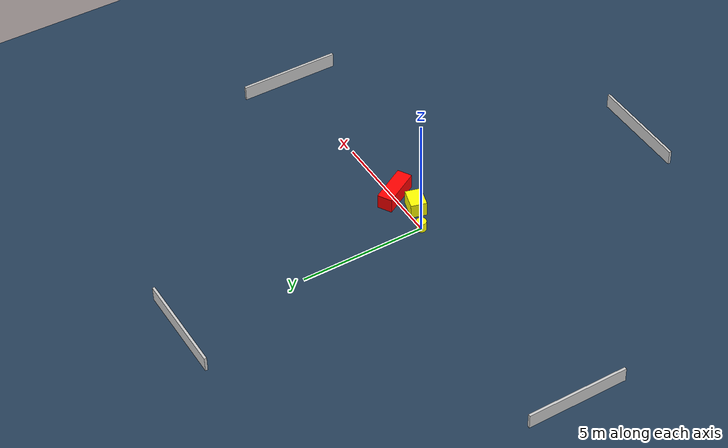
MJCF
<?xml version="1.0" ?>
<mujoco model="generated_environment">
  <option timestep="0.01" integrator="RK4" cone="elliptic"/>
  <default>
    <geom density="1"/>
  </default>
  <asset>
    <texture builtin="gradient" height="3072" name="skybox" rgb1="0.3 0.5 0.7" rgb2="0 0 0" type="skybox" width="512"/>
    <texture builtin="checker" height="300" name="groundplane" rgb1="0.2 0.3 0.4" rgb2="0.1 0.2 0.3" type="2d" width="300"/>
    <material name="groundplane" reflectance="0.2" texrepeat="5 5" texture="groundplane"/>
  </asset>
  <worldbody>
    <light dir="0 0 -1" directional="true" pos="0 0 1.5"/>
    <geom condim="3" friction="0.5 0.005 0.001" material="groundplane" name="floor" pos="0 0 0" size="0 0 0.05" type="plane"/>
    <body name="walls">
      <geom name="wall_1" condim="4" pos="-10.0 0.0 0.3" rgba="0.800000011920929 0.800000011920929 0.800000011920929 1.0" size="0.05 2.0 0.3" type="box"/>
      <geom name="wall_2" condim="4" pos="10.0 0.0 0.3" rgba="0.800000011920929 0.800000011920929 0.800000011920929 1.0" size="0.05 2.0 0.3" type="box"/>
      <geom name="wall_3" condim="4" pos="0.0 -10.0 0.3" rgba="0.800000011920929 0.800000011920929 0.800000011920929 1.0" size="2.0 0.05 0.3" type="box"/>
      <geom name="wall_4" condim="4" pos="0.0 10.0 0.3" rgba="0.800000011920929 0.800000011920929 0.800000011920929 1.0" size="2.0 0.05 0.3" type="box"/>
    </body>
    <body name="robot">
      <joint name="joint_x" type="slide" pos="0 0 0" axis="1 0 0"/>
      <joint name="joint_y" type="slide" pos="0 0 0" axis="0 1 0"/>
      <geom name="robot" type="cylinder" pos="0.0 0.0 0.2" size="0.2 0.2 0.0" mass="5.0" friction="1.0 0.005 0.0001" condim="4" rgba="1.0 1.0 0.0 1.0"/>
    </body>
    <body name="obstacle_1_movable">
      <geom name="obstacle_1_movable" condim="4" pos="1.0178430352482801 -0.3978472476431277 0.3" euler="0 0 254.07421303447856" friction="0.0 0.005 0.001" rgba="1.0 1.0 0.0 1.0" size="0.31458260604791344 0.42438644126418573 0.3" type="box" mass="0.1"/>
      <joint type="free"/>
    </body>
    <body name="obstacle_2_static">
      <geom name="obstacle_2_static" condim="4" pos="1.9948808771499398 -0.06839197582429439 0.3" euler="0 0 209.72478013681135" friction="0.0 0.005 0.001" rgba="1.0 0.0 0.0 1.0" size="0.29704604777725246 0.7938206136719437 0.3" type="box"/>
    </body>
  </worldbody>
  <actuator>
    <motor name="actuator_x" joint="joint_x" gear="1" ctrlrange="-1 1"/>
    <motor name="actuator_y" joint="joint_y" gear="1" ctrlrange="-1 1"/>
  </actuator>
</mujoco>
